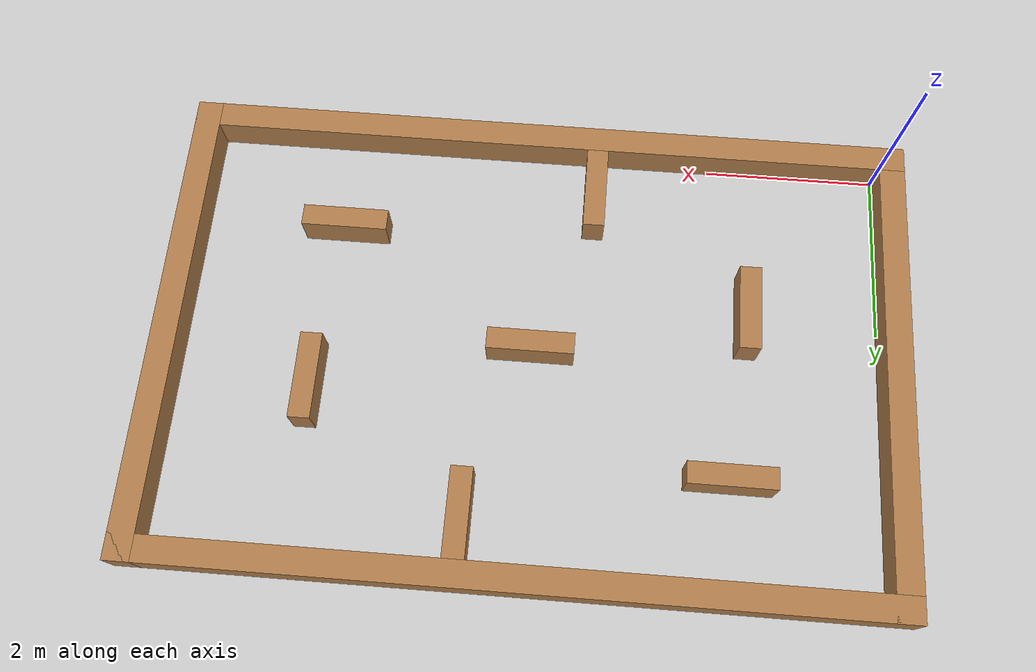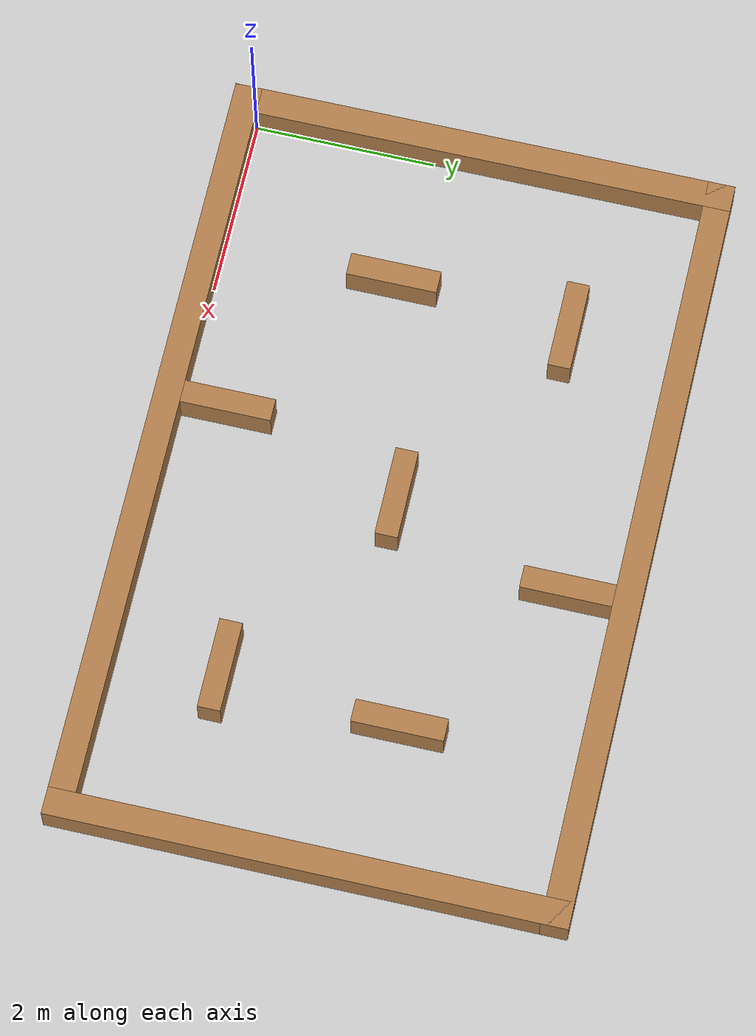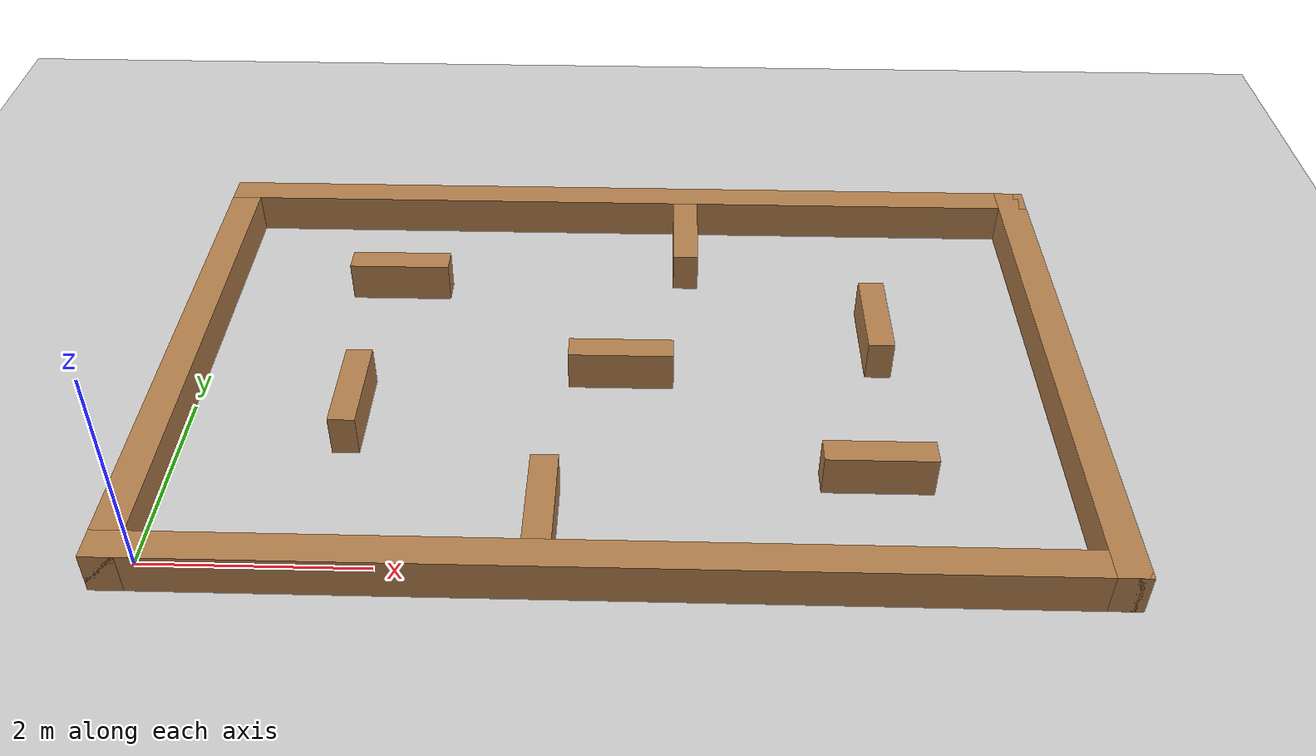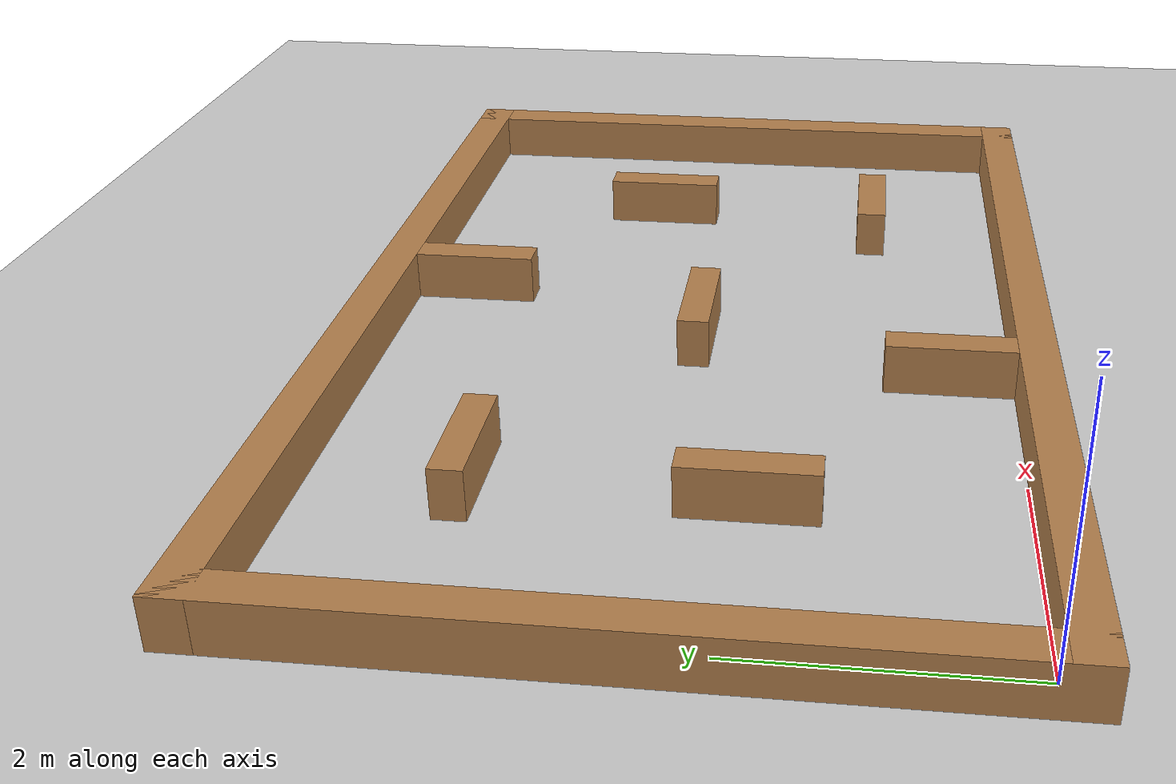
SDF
<sdf version="1.6">
 <world name="default">
  <light name="sun" type="directional">
   <pose>0 0 10 0 -0 0</pose>
   <diffuse>0.8 0.8 0.8 1</diffuse>
   <specular>0.1 0.1 0.1 1</specular>
   <attenuation>
    <range>1000</range>
    <constant>0.9</constant>
    <linear>0.01</linear>
    <quadratic>0.001</quadratic>
   </attenuation>
   <direction>-0.5 0.5 -1</direction>
  </light>
  <model name="ground_plane">
   <static>1</static>
   <link name="link">
    <collision name="collision">
     <geometry><plane><normal>0 0 1</normal><size>100 100</size></plane></geometry>
     <surface><friction><ode><mu>100</mu><mu2>50</mu2></ode></friction></surface>
    </collision>
    <visual name="visual">
     <cast_shadows>0</cast_shadows>
     <geometry><plane><normal>0 0 1</normal><size>100 100</size></plane></geometry>
     <material>
      <script><uri>file://media/materials/scripts/gazebo.material</uri><name>Gazebo/Grey</name></script>
     </material>
    </visual>
   </link>
  </model>
  <gravity>0 0 -9.8</gravity>
  <magnetic_field>6e-06 2.3e-05 -4.2e-05</magnetic_field>
  <atmosphere type="adiabatic"/>
  <physics name="default_physics" default="0" type="ode">
   <max_step_size>0.001</max_step_size>
   <real_time_factor>1</real_time_factor>
   <real_time_update_rate>1000</real_time_update_rate>
  </physics>
  <scene><ambient>0.4 0.4 0.4 1</ambient><background>0.7 0.7 0.7 1</background><shadows>1</shadows></scene>
  <spherical_coordinates>
   <surface_model>EARTH_WGS84</surface_model>
   <latitude_deg>0</latitude_deg>
   <longitude_deg>0</longitude_deg>
   <elevation>0</elevation>
   <heading_deg>0</heading_deg>
  </spherical_coordinates>
  <model name="ICRA2019_map">
   <link name="Wall_0">
    <pose>0 -2.65 0 0 -0 0</pose>
    <visual name="Wall_0_Visual">
     <pose>0 0 0.2 0 -0 0</pose>
     <geometry><box><size>8.6 0.3 0.4</size></box></geometry>
     <material>
      <script><uri>file://media/materials/scripts/gazebo.material</uri><name>Gazebo/Wood</name></script>
      <ambient>0.996078 0.47451 0.0196078 1</ambient>
      <diffuse>1 1 1 1</diffuse>
      <specular>0.2 0.2 0.2 1</specular>
      <emissive>0 0 0 1</emissive>
     </material>
    </visual>
    <collision name="Wall_0_Collision">
     <pose>0 0 0.2 0 -0 0</pose>
     <geometry><box><size>8.6 0.3 0.4</size></box></geometry>
     <surface>
      <friction>
       <ode><mu>1</mu><mu2>1</mu2><fdir1>0 0 0</fdir1><slip1>0</slip1><slip2>0</slip2></ode>
       <torsional>
        <coefficient>1</coefficient>
        <patch_radius>0</patch_radius>
        <surface_radius>0</surface_radius>
        <use_patch_radius>1</use_patch_radius>
        <ode><slip>0</slip></ode>
       </torsional>
      </friction>
      <bounce><restitution_coefficient>0</restitution_coefficient><threshold>1e+06</threshold></bounce>
      <contact>
       <collide_without_contact>0</collide_without_contact>
       <collide_without_contact_bitmask>1</collide_without_contact_bitmask>
       <collide_bitmask>1</collide_bitmask>
       <ode>
        <soft_cfm>0</soft_cfm>
        <soft_erp>0.2</soft_erp>
        <kp>1e+13</kp>
        <kd>1</kd>
        <max_vel>0.01</max_vel>
        <min_depth>0</min_depth>
       </ode>
       <bullet>
        <split_impulse>1</split_impulse>
        <split_impulse_penetration_threshold>-0.01</split_impulse_penetration_threshold>
        <soft_cfm>0</soft_cfm>
        <soft_erp>0.2</soft_erp>
        <kp>1e+13</kp>
        <kd>1</kd>
       </bullet>
      </contact>
     </surface>
    </collision>
   </link>
   <link name="Wall_1">
    <pose>4.15 0 0 0 -0 1.5708</pose>
    <visual name="Wall_1_Visual">
     <pose>0 0 0.2 0 -0 0</pose>
     <geometry><box><size>5.6 0.3 0.4</size></box></geometry>
     <material>
      <script><uri>file://media/materials/scripts/gazebo.material</uri><name>Gazebo/Wood</name></script>
      <ambient>0.996078 0.47451 0.0196078 1</ambient>
      <diffuse>1 1 1 1</diffuse>
      <specular>0.2 0.2 0.2 1</specular>
      <emissive>0 0 0 1</emissive>
     </material>
    </visual>
    <collision name="Wall_1_Collision">
     <pose>0 0 0.2 0 -0 0</pose>
     <geometry><box><size>5.6 0.3 0.4</size></box></geometry>
     <surface>
      <friction>
       <ode><mu>1</mu><mu2>1</mu2><fdir1>0 0 0</fdir1><slip1>0</slip1><slip2>0</slip2></ode>
       <torsional>
        <coefficient>1</coefficient>
        <patch_radius>0</patch_radius>
        <surface_radius>0</surface_radius>
        <use_patch_radius>1</use_patch_radius>
        <ode><slip>0</slip></ode>
       </torsional>
      </friction>
      <bounce><restitution_coefficient>0</restitution_coefficient><threshold>1e+06</threshold></bounce>
      <contact>
       <collide_without_contact>0</collide_without_contact>
       <collide_without_contact_bitmask>1</collide_without_contact_bitmask>
       <collide_bitmask>1</collide_bitmask>
       <ode>
        <soft_cfm>0</soft_cfm>
        <soft_erp>0.2</soft_erp>
        <kp>1e+13</kp>
        <kd>1</kd>
        <max_vel>0.01</max_vel>
        <min_depth>0</min_depth>
       </ode>
       <bullet>
        <split_impulse>1</split_impulse>
        <split_impulse_penetration_threshold>-0.01</split_impulse_penetration_threshold>
        <soft_cfm>0</soft_cfm>
        <soft_erp>0.2</soft_erp>
        <kp>1e+13</kp>
        <kd>1</kd>
       </bullet>
      </contact>
     </surface>
    </collision>
   </link>
   <link name="Wall_11">
    <pose>-2.475 -0.6 0 0 0 -1.5708</pose>
    <inertial>
     <mass>1</mass>
     <inertia><ixx>1</ixx><ixy>0</ixy><ixz>0</ixz><iyy>1</iyy><iyz>0</iyz><izz>1</izz></inertia>
    </inertial>
    <visual name="Wall_11_Visual">
     <pose>0 0 0.2 0 -0 0</pose>
     <geometry><box><size>1 0.25 0.4</size></box></geometry>
     <material>
      <script><uri>file://media/materials/scripts/gazebo.material</uri><name>Gazebo/Wood</name></script>
      <ambient>0.996 0.475 0.02 1</ambient>
      <diffuse>1 1 1 1</diffuse>
      <specular>0.2 0.2 0.2 1</specular>
      <emissive>0 0 0 1</emissive>
      <shader type="vertex"><normal_map>__default__</normal_map></shader>
     </material>
    </visual>
    <collision name="Wall_11_Collision">
     <pose>0 0 0.2 0 -0 0</pose>
     <geometry><box><size>1 0.25 0.4</size></box></geometry>
     <surface>
      <friction>
       <ode><mu>1</mu><mu2>1</mu2><fdir1>0 0 0</fdir1><slip1>0</slip1><slip2>0</slip2></ode>
       <torsional>
        <coefficient>1</coefficient>
        <patch_radius>0</patch_radius>
        <surface_radius>0</surface_radius>
        <use_patch_radius>1</use_patch_radius>
        <ode><slip>0</slip></ode>
       </torsional>
      </friction>
      <bounce><restitution_coefficient>0</restitution_coefficient><threshold>1e+06</threshold></bounce>
      <contact>
       <collide_without_contact>0</collide_without_contact>
       <collide_without_contact_bitmask>1</collide_without_contact_bitmask>
       <collide_bitmask>1</collide_bitmask>
       <ode>
        <soft_cfm>0</soft_cfm>
        <soft_erp>0.2</soft_erp>
        <kp>1e+13</kp>
        <kd>1</kd>
        <max_vel>0.01</max_vel>
        <min_depth>0</min_depth>
       </ode>
       <bullet>
        <split_impulse>1</split_impulse>
        <split_impulse_penetration_threshold>-0.01</split_impulse_penetration_threshold>
        <soft_cfm>0</soft_cfm>
        <soft_erp>0.2</soft_erp>
        <kp>1e+13</kp>
        <kd>1</kd>
       </bullet>
      </contact>
     </surface>
    </collision>
   </link>
   <link name="Wall_13">
    <pose>0.625 2 0 0 0 -1.5708</pose>
    <inertial>
     <mass>1</mass>
     <inertia><ixx>1</ixx><ixy>0</ixy><ixz>0</ixz><iyy>1</iyy><iyz>0</iyz><izz>1</izz></inertia>
    </inertial>
    <visual name="Wall_13_Visual">
     <pose>0 0 0.2 0 -0 0</pose>
     <geometry><box><size>1 0.25 0.4</size></box></geometry>
     <material>
      <script><uri>file://media/materials/scripts/gazebo.material</uri><name>Gazebo/Wood</name></script>
      <ambient>0.996 0.475 0.02 1</ambient>
      <diffuse>1 1 1 1</diffuse>
      <specular>0.2 0.2 0.2 1</specular>
      <emissive>0 0 0 1</emissive>
      <shader type="vertex"><normal_map>__default__</normal_map></shader>
     </material>
    </visual>
    <collision name="Wall_13_Collision">
     <pose>0 0 0.2 0 -0 0</pose>
     <geometry><box><size>1 0.25 0.4</size></box></geometry>
     <surface>
      <friction>
       <ode><mu>1</mu><mu2>1</mu2><fdir1>0 0 0</fdir1><slip1>0</slip1><slip2>0</slip2></ode>
       <torsional>
        <coefficient>1</coefficient>
        <patch_radius>0</patch_radius>
        <surface_radius>0</surface_radius>
        <use_patch_radius>1</use_patch_radius>
        <ode><slip>0</slip></ode>
       </torsional>
      </friction>
      <bounce><restitution_coefficient>0</restitution_coefficient><threshold>1e+06</threshold></bounce>
      <contact>
       <collide_without_contact>0</collide_without_contact>
       <collide_without_contact_bitmask>1</collide_without_contact_bitmask>
       <collide_bitmask>1</collide_bitmask>
       <ode>
        <soft_cfm>0</soft_cfm>
        <soft_erp>0.2</soft_erp>
        <kp>1e+13</kp>
        <kd>1</kd>
        <max_vel>0.01</max_vel>
        <min_depth>0</min_depth>
       </ode>
       <bullet>
        <split_impulse>1</split_impulse>
        <split_impulse_penetration_threshold>-0.01</split_impulse_penetration_threshold>
        <soft_cfm>0</soft_cfm>
        <soft_erp>0.2</soft_erp>
        <kp>1e+13</kp>
        <kd>1</kd>
       </bullet>
      </contact>
     </surface>
    </collision>
   </link>
   <link name="Wall_15">
    <pose>2.475 0.6 0 0 -0 1.5708</pose>
    <inertial>
     <mass>1</mass>
     <inertia><ixx>1</ixx><ixy>0</ixy><ixz>0</ixz><iyy>1</iyy><iyz>0</iyz><izz>1</izz></inertia>
    </inertial>
    <visual name="Wall_15_Visual">
     <pose>0 0 0.2 0 -0 0</pose>
     <geometry><box><size>1 0.25 0.4</size></box></geometry>
     <material>
      <script><uri>file://media/materials/scripts/gazebo.material</uri><name>Gazebo/Wood</name></script>
      <ambient>0.996 0.475 0.02 1</ambient>
      <diffuse>1 1 1 1</diffuse>
      <specular>0.2 0.2 0.2 1</specular>
      <emissive>0 0 0 1</emissive>
      <shader type="vertex"><normal_map>__default__</normal_map></shader>
     </material>
    </visual>
    <collision name="Wall_15_Collision">
     <pose>0 0 0.2 0 -0 0</pose>
     <geometry><box><size>1 0.25 0.4</size></box></geometry>
     <surface>
      <friction>
       <ode><mu>1</mu><mu2>1</mu2><fdir1>0 0 0</fdir1><slip1>0</slip1><slip2>0</slip2></ode>
       <torsional>
        <coefficient>1</coefficient>
        <patch_radius>0</patch_radius>
        <surface_radius>0</surface_radius>
        <use_patch_radius>1</use_patch_radius>
        <ode><slip>0</slip></ode>
       </torsional>
      </friction>
      <bounce><restitution_coefficient>0</restitution_coefficient><threshold>1e+06</threshold></bounce>
      <contact>
       <collide_without_contact>0</collide_without_contact>
       <collide_without_contact_bitmask>1</collide_without_contact_bitmask>
       <collide_bitmask>1</collide_bitmask>
       <ode>
        <soft_cfm>0</soft_cfm>
        <soft_erp>0.2</soft_erp>
        <kp>1e+13</kp>
        <kd>1</kd>
        <max_vel>0.01</max_vel>
        <min_depth>0</min_depth>
       </ode>
       <bullet>
        <split_impulse>1</split_impulse>
        <split_impulse_penetration_threshold>-0.01</split_impulse_penetration_threshold>
        <soft_cfm>0</soft_cfm>
        <soft_erp>0.2</soft_erp>
        <kp>1e+13</kp>
        <kd>1</kd>
       </bullet>
      </contact>
     </surface>
    </collision>
   </link>
   <link name="Wall_17">
    <pose>2.3 -1.375 0 0 -0 3.14159</pose>
    <inertial>
     <mass>1</mass>
     <inertia><ixx>1</ixx><ixy>0</ixy><ixz>0</ixz><iyy>1</iyy><iyz>0</iyz><izz>1</izz></inertia>
    </inertial>
    <visual name="Wall_17_Visual">
     <pose>0 0 0.2 0 -0 0</pose>
     <geometry><box><size>1 0.25 0.4</size></box></geometry>
     <material>
      <script><uri>file://media/materials/scripts/gazebo.material</uri><name>Gazebo/Wood</name></script>
      <ambient>0.996 0.475 0.02 1</ambient>
      <diffuse>1 1 1 1</diffuse>
      <specular>0.2 0.2 0.2 1</specular>
      <emissive>0 0 0 1</emissive>
      <shader type="vertex"><normal_map>__default__</normal_map></shader>
     </material>
    </visual>
    <collision name="Wall_17_Collision">
     <pose>0 0 0.2 0 -0 0</pose>
     <geometry><box><size>1 0.25 0.4</size></box></geometry>
     <surface>
      <friction>
       <ode><mu>1</mu><mu2>1</mu2><fdir1>0 0 0</fdir1><slip1>0</slip1><slip2>0</slip2></ode>
       <torsional>
        <coefficient>1</coefficient>
        <patch_radius>0</patch_radius>
        <surface_radius>0</surface_radius>
        <use_patch_radius>1</use_patch_radius>
        <ode><slip>0</slip></ode>
       </torsional>
      </friction>
      <bounce><restitution_coefficient>0</restitution_coefficient><threshold>1e+06</threshold></bounce>
      <contact>
       <collide_without_contact>0</collide_without_contact>
       <collide_without_contact_bitmask>1</collide_without_contact_bitmask>
       <collide_bitmask>1</collide_bitmask>
       <ode>
        <soft_cfm>0</soft_cfm>
        <soft_erp>0.2</soft_erp>
        <kp>1e+13</kp>
        <kd>1</kd>
        <max_vel>0.01</max_vel>
        <min_depth>0</min_depth>
       </ode>
       <bullet>
        <split_impulse>1</split_impulse>
        <split_impulse_penetration_threshold>-0.01</split_impulse_penetration_threshold>
        <soft_cfm>0</soft_cfm>
        <soft_erp>0.2</soft_erp>
        <kp>1e+13</kp>
        <kd>1</kd>
       </bullet>
      </contact>
     </surface>
    </collision>
   </link>
   <link name="Wall_2">
    <pose>0 2.65 0 0 -0 3.14159</pose>
    <visual name="Wall_2_Visual">
     <pose>0 0 0.2 0 -0 0</pose>
     <geometry><box><size>8.6 0.3 0.4</size></box></geometry>
     <material>
      <script><uri>file://media/materials/scripts/gazebo.material</uri><name>Gazebo/Wood</name></script>
      <ambient>0.996078 0.47451 0.0196078 1</ambient>
      <diffuse>1 1 1 1</diffuse>
      <specular>0.2 0.2 0.2 1</specular>
      <emissive>0 0 0 1</emissive>
     </material>
    </visual>
    <collision name="Wall_2_Collision">
     <pose>0 0 0.2 0 -0 0</pose>
     <geometry><box><size>8.6 0.3 0.4</size></box></geometry>
     <surface>
      <friction>
       <ode><mu>1</mu><mu2>1</mu2><fdir1>0 0 0</fdir1><slip1>0</slip1><slip2>0</slip2></ode>
       <torsional>
        <coefficient>1</coefficient>
        <patch_radius>0</patch_radius>
        <surface_radius>0</surface_radius>
        <use_patch_radius>1</use_patch_radius>
        <ode><slip>0</slip></ode>
       </torsional>
      </friction>
      <bounce><restitution_coefficient>0</restitution_coefficient><threshold>1e+06</threshold></bounce>
      <contact>
       <collide_without_contact>0</collide_without_contact>
       <collide_without_contact_bitmask>1</collide_without_contact_bitmask>
       <collide_bitmask>1</collide_bitmask>
       <ode>
        <soft_cfm>0</soft_cfm>
        <soft_erp>0.2</soft_erp>
        <kp>1e+13</kp>
        <kd>1</kd>
        <max_vel>0.01</max_vel>
        <min_depth>0</min_depth>
       </ode>
       <bullet>
        <split_impulse>1</split_impulse>
        <split_impulse_penetration_threshold>-0.01</split_impulse_penetration_threshold>
        <soft_cfm>0</soft_cfm>
        <soft_erp>0.2</soft_erp>
        <kp>1e+13</kp>
        <kd>1</kd>
       </bullet>
      </contact>
     </surface>
    </collision>
   </link>
   <link name="Wall_3">
    <pose>-4.15 0 0 0 0 -1.5708</pose>
    <visual name="Wall_3_Visual">
     <pose>0 0 0.2 0 -0 0</pose>
     <geometry><box><size>5.6 0.3 0.4</size></box></geometry>
     <material>
      <script><uri>file://media/materials/scripts/gazebo.material</uri><name>Gazebo/Wood</name></script>
      <ambient>0.996078 0.47451 0.0196078 1</ambient>
      <diffuse>1 1 1 1</diffuse>
      <specular>0.2 0.2 0.2 1</specular>
      <emissive>0 0 0 1</emissive>
     </material>
    </visual>
    <collision name="Wall_3_Collision">
     <pose>0 0 0.2 0 -0 0</pose>
     <geometry><box><size>5.6 0.3 0.4</size></box></geometry>
     <surface>
      <friction>
       <ode><mu>1</mu><mu2>1</mu2><fdir1>0 0 0</fdir1><slip1>0</slip1><slip2>0</slip2></ode>
       <torsional>
        <coefficient>1</coefficient>
        <patch_radius>0</patch_radius>
        <surface_radius>0</surface_radius>
        <use_patch_radius>1</use_patch_radius>
        <ode><slip>0</slip></ode>
       </torsional>
      </friction>
      <bounce><restitution_coefficient>0</restitution_coefficient><threshold>1e+06</threshold></bounce>
      <contact>
       <collide_without_contact>0</collide_without_contact>
       <collide_without_contact_bitmask>1</collide_without_contact_bitmask>
       <collide_bitmask>1</collide_bitmask>
       <ode>
        <soft_cfm>0</soft_cfm>
        <soft_erp>0.2</soft_erp>
        <kp>1e+13</kp>
        <kd>1</kd>
        <max_vel>0.01</max_vel>
        <min_depth>0</min_depth>
       </ode>
       <bullet>
        <split_impulse>1</split_impulse>
        <split_impulse_penetration_threshold>-0.01</split_impulse_penetration_threshold>
        <soft_cfm>0</soft_cfm>
        <soft_erp>0.2</soft_erp>
        <kp>1e+13</kp>
        <kd>1</kd>
       </bullet>
      </contact>
     </surface>
    </collision>
   </link>
   <link name="Wall_5">
    <pose>-0.625 -2 0 0 0 -1.5708</pose>
    <inertial>
     <mass>1</mass>
     <inertia><ixx>1</ixx><ixy>0</ixy><ixz>0</ixz><iyy>1</iyy><iyz>0</iyz><izz>1</izz></inertia>
    </inertial>
    <visual name="Wall_5_Visual">
     <pose>0 0 0.2 0 -0 0</pose>
     <geometry><box><size>1 0.25 0.4</size></box></geometry>
     <material>
      <script><uri>file://media/materials/scripts/gazebo.material</uri><name>Gazebo/Wood</name></script>
      <ambient>0.996 0.475 0.02 1</ambient>
      <diffuse>1 1 1 1</diffuse>
      <specular>0.2 0.2 0.2 1</specular>
      <emissive>0 0 0 1</emissive>
      <shader type="vertex"><normal_map>__default__</normal_map></shader>
     </material>
    </visual>
    <collision name="Wall_5_Collision">
     <pose>0 0 0.2 0 -0 0</pose>
     <geometry><box><size>1 0.25 0.4</size></box></geometry>
     <surface>
      <friction>
       <ode><mu>1</mu><mu2>1</mu2><fdir1>0 0 0</fdir1><slip1>0</slip1><slip2>0</slip2></ode>
       <torsional>
        <coefficient>1</coefficient>
        <patch_radius>0</patch_radius>
        <surface_radius>0</surface_radius>
        <use_patch_radius>1</use_patch_radius>
        <ode><slip>0</slip></ode>
       </torsional>
      </friction>
      <bounce><restitution_coefficient>0</restitution_coefficient><threshold>1e+06</threshold></bounce>
      <contact>
       <collide_without_contact>0</collide_without_contact>
       <collide_without_contact_bitmask>1</collide_without_contact_bitmask>
       <collide_bitmask>1</collide_bitmask>
       <ode>
        <soft_cfm>0</soft_cfm>
        <soft_erp>0.2</soft_erp>
        <kp>1e+13</kp>
        <kd>1</kd>
        <max_vel>0.01</max_vel>
        <min_depth>0</min_depth>
       </ode>
       <bullet>
        <split_impulse>1</split_impulse>
        <split_impulse_penetration_threshold>-0.01</split_impulse_penetration_threshold>
        <soft_cfm>0</soft_cfm>
        <soft_erp>0.2</soft_erp>
        <kp>1e+13</kp>
        <kd>1</kd>
       </bullet>
      </contact>
     </surface>
    </collision>
   </link>
   <link name="Wall_7">
    <inertial>
     <mass>1</mass>
     <inertia><ixx>1</ixx><ixy>0</ixy><ixz>0</ixz><iyy>1</iyy><iyz>0</iyz><izz>1</izz></inertia>
    </inertial>
    <visual name="Wall_7_Visual">
     <pose>0 0 0.2 0 -0 0</pose>
     <geometry><box><size>1 0.25 0.4</size></box></geometry>
     <material>
      <script><uri>file://media/materials/scripts/gazebo.material</uri><name>Gazebo/Wood</name></script>
      <ambient>0.996 0.475 0.02 1</ambient>
      <diffuse>1 1 1 1</diffuse>
      <specular>0.2 0.2 0.2 1</specular>
      <emissive>0 0 0 1</emissive>
      <shader type="vertex"><normal_map>__default__</normal_map></shader>
     </material>
    </visual>
    <collision name="Wall_7_Collision">
     <pose>0 0 0.2 0 -0 0</pose>
     <geometry><box><size>1 0.25 0.4</size></box></geometry>
     <surface>
      <friction>
       <ode><mu>1</mu><mu2>1</mu2><fdir1>0 0 0</fdir1><slip1>0</slip1><slip2>0</slip2></ode>
       <torsional>
        <coefficient>1</coefficient>
        <patch_radius>0</patch_radius>
        <surface_radius>0</surface_radius>
        <use_patch_radius>1</use_patch_radius>
        <ode><slip>0</slip></ode>
       </torsional>
      </friction>
      <bounce><restitution_coefficient>0</restitution_coefficient><threshold>1e+06</threshold></bounce>
      <contact>
       <collide_without_contact>0</collide_without_contact>
       <collide_without_contact_bitmask>1</collide_without_contact_bitmask>
       <collide_bitmask>1</collide_bitmask>
       <ode>
        <soft_cfm>0</soft_cfm>
        <soft_erp>0.2</soft_erp>
        <kp>1e+13</kp>
        <kd>1</kd>
        <max_vel>0.01</max_vel>
        <min_depth>0</min_depth>
       </ode>
       <bullet>
        <split_impulse>1</split_impulse>
        <split_impulse_penetration_threshold>-0.01</split_impulse_penetration_threshold>
        <soft_cfm>0</soft_cfm>
        <soft_erp>0.2</soft_erp>
        <kp>1e+13</kp>
        <kd>1</kd>
       </bullet>
      </contact>
     </surface>
    </collision>
   </link>
   <link name="Wall_9">
    <pose>-2.3 1.375 0 0 -0 0</pose>
    <inertial>
     <mass>1</mass>
     <inertia><ixx>1</ixx><ixy>0</ixy><ixz>0</ixz><iyy>1</iyy><iyz>0</iyz><izz>1</izz></inertia>
    </inertial>
    <visual name="Wall_9_Visual">
     <pose>0 0 0.2 0 -0 0</pose>
     <geometry><box><size>1 0.25 0.4</size></box></geometry>
     <material>
      <script><uri>file://media/materials/scripts/gazebo.material</uri><name>Gazebo/Wood</name></script>
      <ambient>0.996 0.475 0.02 1</ambient>
      <diffuse>1 1 1 1</diffuse>
      <specular>0.2 0.2 0.2 1</specular>
      <emissive>0 0 0 1</emissive>
      <shader type="vertex"><normal_map>__default__</normal_map></shader>
     </material>
    </visual>
    <collision name="Wall_9_Collision">
     <pose>0 0 0.2 0 -0 0</pose>
     <geometry><box><size>1 0.25 0.4</size></box></geometry>
     <surface>
      <friction>
       <ode><mu>1</mu><mu2>1</mu2><fdir1>0 0 0</fdir1><slip1>0</slip1><slip2>0</slip2></ode>
       <torsional>
        <coefficient>1</coefficient>
        <patch_radius>0</patch_radius>
        <surface_radius>0</surface_radius>
        <use_patch_radius>1</use_patch_radius>
        <ode><slip>0</slip></ode>
       </torsional>
      </friction>
      <bounce><restitution_coefficient>0</restitution_coefficient><threshold>1e+06</threshold></bounce>
      <contact>
       <collide_without_contact>0</collide_without_contact>
       <collide_without_contact_bitmask>1</collide_without_contact_bitmask>
       <collide_bitmask>1</collide_bitmask>
       <ode>
        <soft_cfm>0</soft_cfm>
        <soft_erp>0.2</soft_erp>
        <kp>1e+13</kp>
        <kd>1</kd>
        <max_vel>0.01</max_vel>
        <min_depth>0</min_depth>
       </ode>
       <bullet>
        <split_impulse>1</split_impulse>
        <split_impulse_penetration_threshold>-0.01</split_impulse_penetration_threshold>
        <soft_cfm>0</soft_cfm>
        <soft_erp>0.2</soft_erp>
        <kp>1e+13</kp>
        <kd>1</kd>
       </bullet>
      </contact>
     </surface>
    </collision>
   </link>
   <static>1</static>
   <pose>4 2.5 0 0 -0 0</pose>
  </model>
 </world>
</sdf>
